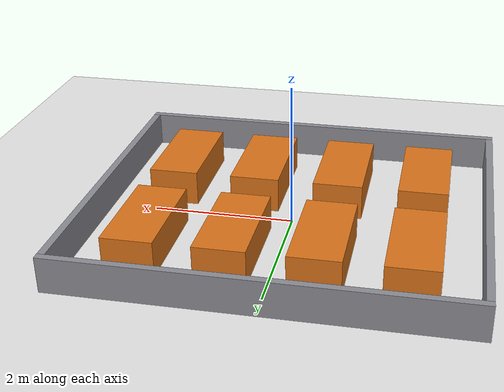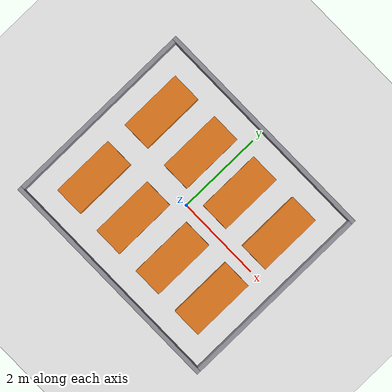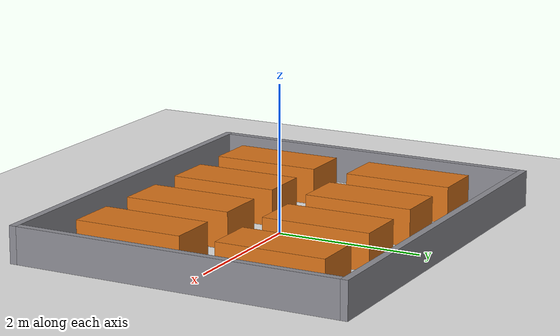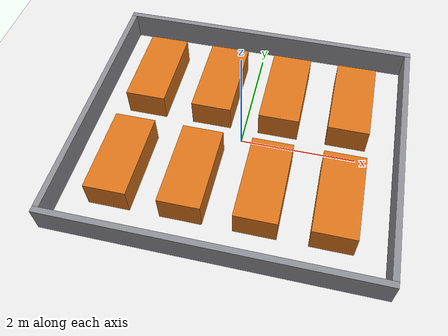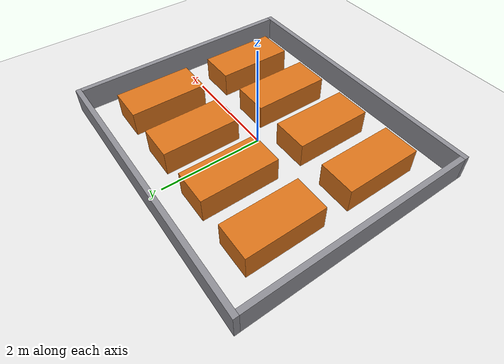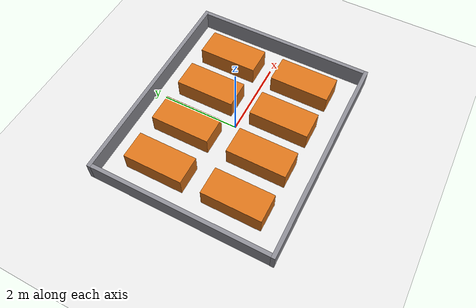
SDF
<?xml version="1.0" ?>
<!-- GENERATED by `ros2 run parakram_sim generate_warehouse` (v1) from
     config/warehouse_grid.yaml. Do not edit by hand: edit the YAML and regenerate. -->
<sdf version="1.8">
  <world name="warehouse">
    <physics name="1ms" type="ignored">
      <max_step_size>0.001</max_step_size>
      <real_time_factor>1.0</real_time_factor>
    </physics>
    <plugin filename="gz-sim-physics-system" name="gz::sim::systems::Physics"/>
    <plugin filename="gz-sim-user-commands-system" name="gz::sim::systems::UserCommands"/>
    <plugin filename="gz-sim-scene-broadcaster-system" name="gz::sim::systems::SceneBroadcaster"/>
    <!-- The render engine is chosen on the command line (fleet_sim.launch.py arg
         render_engine), not here, so a GPU machine and a VM can share this file. -->
    <plugin filename="gz-sim-sensors-system" name="gz::sim::systems::Sensors"/>
    <plugin filename="gz-sim-imu-system" name="gz::sim::systems::Imu"/>

    <scene>
      <ambient>0.8 0.8 0.8 1</ambient>
      <background>0.75 0.75 0.75 1</background>
      <shadows>false</shadows>
      <grid>false</grid>
    </scene>

    <light type="directional" name="sun">
      <cast_shadows>false</cast_shadows>
      <pose>0 0 10 0 0 0</pose>
      <diffuse>0.9 0.9 0.9 1</diffuse>
      <specular>0.2 0.2 0.2 1</specular>
      <direction>-0.3 0.2 -0.9</direction>
    </light>

    <model name="ground_plane">
      <static>true</static>
      <link name="link">
        <collision name="collision">
          <geometry><plane><normal>0 0 1</normal><size>20 20</size></plane></geometry>
        </collision>
        <visual name="visual">
          <geometry><plane><normal>0 0 1</normal><size>20 20</size></plane></geometry>
          <material><ambient>0.9 0.9 0.9 1</ambient><diffuse>0.9 0.9 0.9 1</diffuse></material>
        </visual>
      </link>
    </model>

    <model name="wall_south">
      <static>true</static>
      <pose>0.0 -2.3 0.25 0 0 0</pose>
      <link name="link">
        <collision name="collision"><geometry><box><size>5.5 0.1 0.5</size></box></geometry></collision>
        <visual name="visual"><geometry><box><size>5.5 0.1 0.5</size></box></geometry>
          <material><ambient>0.55 0.55 0.58 1</ambient><diffuse>0.55 0.55 0.58 1</diffuse></material>
        </visual>
      </link>
    </model>
    <model name="wall_north">
      <static>true</static>
      <pose>0.0 2.3 0.25 0 0 0</pose>
      <link name="link">
        <collision name="collision"><geometry><box><size>5.5 0.1 0.5</size></box></geometry></collision>
        <visual name="visual"><geometry><box><size>5.5 0.1 0.5</size></box></geometry>
          <material><ambient>0.55 0.55 0.58 1</ambient><diffuse>0.55 0.55 0.58 1</diffuse></material>
        </visual>
      </link>
    </model>
    <model name="wall_west">
      <static>true</static>
      <pose>-2.7 0.0 0.25 0 0 0</pose>
      <link name="link">
        <collision name="collision"><geometry><box><size>0.1 4.5 0.5</size></box></geometry></collision>
        <visual name="visual"><geometry><box><size>0.1 4.5 0.5</size></box></geometry>
          <material><ambient>0.55 0.55 0.58 1</ambient><diffuse>0.55 0.55 0.58 1</diffuse></material>
        </visual>
      </link>
    </model>
    <model name="wall_east">
      <static>true</static>
      <pose>2.7 0.0 0.25 0 0 0</pose>
      <link name="link">
        <collision name="collision"><geometry><box><size>0.1 4.5 0.5</size></box></geometry></collision>
        <visual name="visual"><geometry><box><size>0.1 4.5 0.5</size></box></geometry>
          <material><ambient>0.55 0.55 0.58 1</ambient><diffuse>0.55 0.55 0.58 1</diffuse></material>
        </visual>
      </link>
    </model>
    <model name="shelf_r1_c1">
      <static>true</static>
      <pose>-1.8 -1.0 0.25 0 0 0</pose>
      <link name="link">
        <collision name="collision"><geometry><box><size>0.7 1.5 0.5</size></box></geometry></collision>
        <visual name="visual"><geometry><box><size>0.7 1.5 0.5</size></box></geometry>
          <material><ambient>0.85 0.45 0.10 1</ambient><diffuse>0.85 0.45 0.10 1</diffuse></material>
        </visual>
      </link>
    </model>
    <model name="shelf_r1_c4">
      <static>true</static>
      <pose>-0.6 -1.0 0.25 0 0 0</pose>
      <link name="link">
        <collision name="collision"><geometry><box><size>0.7 1.5 0.5</size></box></geometry></collision>
        <visual name="visual"><geometry><box><size>0.7 1.5 0.5</size></box></geometry>
          <material><ambient>0.85 0.45 0.10 1</ambient><diffuse>0.85 0.45 0.10 1</diffuse></material>
        </visual>
      </link>
    </model>
    <model name="shelf_r1_c7">
      <static>true</static>
      <pose>0.6 -1.0 0.25 0 0 0</pose>
      <link name="link">
        <collision name="collision"><geometry><box><size>0.7 1.5 0.5</size></box></geometry></collision>
        <visual name="visual"><geometry><box><size>0.7 1.5 0.5</size></box></geometry>
          <material><ambient>0.85 0.45 0.10 1</ambient><diffuse>0.85 0.45 0.10 1</diffuse></material>
        </visual>
      </link>
    </model>
    <model name="shelf_r1_c10">
      <static>true</static>
      <pose>1.8 -1.0 0.25 0 0 0</pose>
      <link name="link">
        <collision name="collision"><geometry><box><size>0.7 1.5 0.5</size></box></geometry></collision>
        <visual name="visual"><geometry><box><size>0.7 1.5 0.5</size></box></geometry>
          <material><ambient>0.85 0.45 0.10 1</ambient><diffuse>0.85 0.45 0.10 1</diffuse></material>
        </visual>
      </link>
    </model>
    <model name="shelf_r6_c1">
      <static>true</static>
      <pose>-1.8 1.0 0.25 0 0 0</pose>
      <link name="link">
        <collision name="collision"><geometry><box><size>0.7 1.5 0.5</size></box></geometry></collision>
        <visual name="visual"><geometry><box><size>0.7 1.5 0.5</size></box></geometry>
          <material><ambient>0.85 0.45 0.10 1</ambient><diffuse>0.85 0.45 0.10 1</diffuse></material>
        </visual>
      </link>
    </model>
    <model name="shelf_r6_c4">
      <static>true</static>
      <pose>-0.6 1.0 0.25 0 0 0</pose>
      <link name="link">
        <collision name="collision"><geometry><box><size>0.7 1.5 0.5</size></box></geometry></collision>
        <visual name="visual"><geometry><box><size>0.7 1.5 0.5</size></box></geometry>
          <material><ambient>0.85 0.45 0.10 1</ambient><diffuse>0.85 0.45 0.10 1</diffuse></material>
        </visual>
      </link>
    </model>
    <model name="shelf_r6_c7">
      <static>true</static>
      <pose>0.6 1.0 0.25 0 0 0</pose>
      <link name="link">
        <collision name="collision"><geometry><box><size>0.7 1.5 0.5</size></box></geometry></collision>
        <visual name="visual"><geometry><box><size>0.7 1.5 0.5</size></box></geometry>
          <material><ambient>0.85 0.45 0.10 1</ambient><diffuse>0.85 0.45 0.10 1</diffuse></material>
        </visual>
      </link>
    </model>
    <model name="shelf_r6_c10">
      <static>true</static>
      <pose>1.8 1.0 0.25 0 0 0</pose>
      <link name="link">
        <collision name="collision"><geometry><box><size>0.7 1.5 0.5</size></box></geometry></collision>
        <visual name="visual"><geometry><box><size>0.7 1.5 0.5</size></box></geometry>
          <material><ambient>0.85 0.45 0.10 1</ambient><diffuse>0.85 0.45 0.10 1</diffuse></material>
        </visual>
      </link>
    </model>
  </world>
</sdf>
